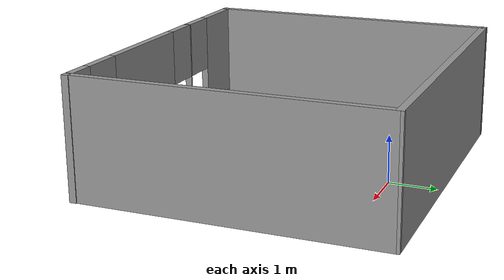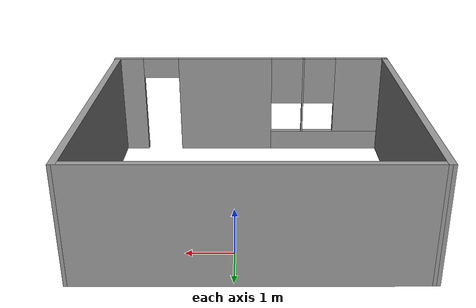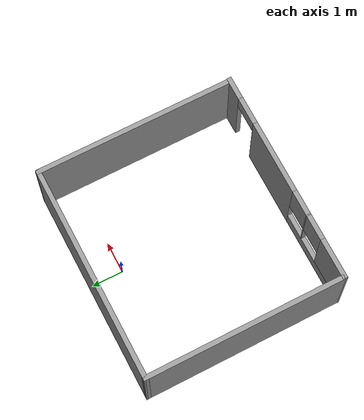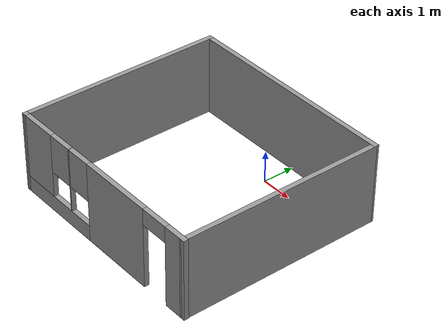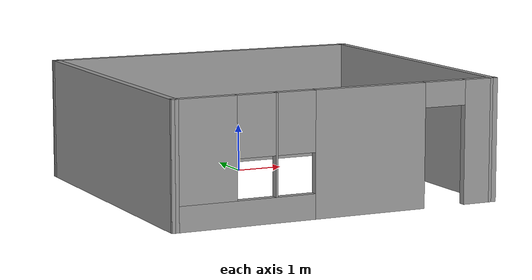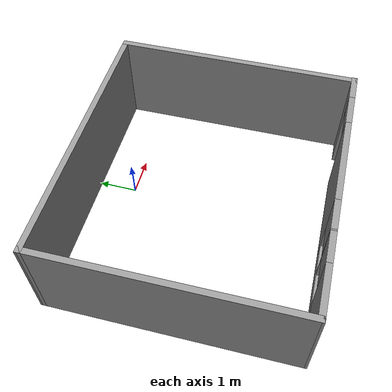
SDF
<?xml version='1.0'?>
<sdf version='1.6'>
  <model name='building_1'>
    <pose frame=''>-0.324334 -2.10719 0 0 -0 0</pose>
    <link name='Wall_0'>
      <collision name='Wall_0_Collision'>
        <geometry>
          <box>
            <size>6.44438 0.15 2.5</size>
          </box>
        </geometry>
        <pose frame=''>0 0 1.25 0 -0 0</pose>
      </collision>
      <visual name='Wall_0_Visual'>
        <pose frame=''>0 0 1.25 0 -0 0</pose>
        <geometry>
          <box>
            <size>6.44438 0.15 2.5</size>
          </box>
        </geometry>
        <material>
          <script>
            <uri>file://media/materials/scripts/gazebo.material</uri>
            <name>Gazebo/Grey</name>
          </script>
          <ambient>1 1 1 1</ambient>
        </material>
        <meta>
          <layer>0</layer>
        </meta>
      </visual>
      <pose frame=''>-3.43372 0 0 0 -0 1.57141</pose>
    </link>
    <link name='Wall_1'>
      <collision name='Wall_1_Collision'>
        <geometry>
          <box>
            <size>7 0.15 2.5</size>
          </box>
        </geometry>
        <pose frame=''>0 0 1.25 0 -0 0</pose>
      </collision>
      <visual name='Wall_1_Visual'>
        <pose frame=''>0 0 1.25 0 -0 0</pose>
        <geometry>
          <box>
            <size>7 0.15 2.5</size>
          </box>
        </geometry>
        <material>
          <script>
            <uri>file://media/materials/scripts/gazebo.material</uri>
            <name>Gazebo/Grey</name>
          </script>
          <ambient>1 1 1 1</ambient>
        </material>
        <meta>
          <layer>0</layer>
        </meta>
      </visual>
      <pose frame=''>-0.010666 3.14719 0 0 -0 0</pose>
    </link>
    <link name='Wall_2'>
      <collision name='Wall_2_Collision'>
        <geometry>
          <box>
            <size>6.44438 0.15 2.5</size>
          </box>
        </geometry>
        <pose frame=''>0 0 1.25 0 -0 0</pose>
      </collision>
      <visual name='Wall_2_Visual'>
        <pose frame=''>0 0 1.25 0 -0 0</pose>
        <geometry>
          <box>
            <size>6.44438 0.15 2.5</size>
          </box>
        </geometry>
        <material>
          <script>
            <uri>file://media/materials/scripts/gazebo.material</uri>
            <name>Gazebo/Grey</name>
          </script>
          <ambient>1 1 1 1</ambient>
        </material>
        <meta>
          <layer>0</layer>
        </meta>
      </visual>
      <pose frame=''>3.41628 0 0 0 0 -1.57018</pose>
    </link>
    <link name='Wall_3'>
      <pose frame=''>0.010712 -3.14719 0 0 -0 3.14159</pose>
      <visual name='Wall_3_Visual_0'>
        <pose frame=''>-3.12841 0 1.25 0 -0 0</pose>
        <geometry>
          <box>
            <size>0.743184 0.15 2.5</size>
          </box>
        </geometry>
        <material>
          <script>
            <uri>file://media/materials/scripts/gazebo.material</uri>
            <name>Gazebo/Grey</name>
          </script>
          <ambient>1 1 1 1</ambient>
        </material>
        <meta>
          <layer>0</layer>
        </meta>
      </visual>
      <collision name='Wall_3_Collision_0'>
        <geometry>
          <box>
            <size>0.743184 0.15 2.5</size>
          </box>
        </geometry>
        <pose frame=''>-3.12841 0 1.25 0 -0 0</pose>
      </collision>
      <visual name='Wall_3_Visual_1'>
        <pose frame=''>-0.657127 0 1.25 0 -0 0</pose>
        <geometry>
          <box>
            <size>2.39938 0.15 2.5</size>
          </box>
        </geometry>
        <material>
          <script>
            <uri>file://media/materials/scripts/gazebo.material</uri>
            <name>Gazebo/Grey</name>
          </script>
          <ambient>1 1 1 1</ambient>
        </material>
        <meta>
          <layer>0</layer>
        </meta>
      </visual>
      <collision name='Wall_3_Collision_1'>
        <geometry>
          <box>
            <size>2.39938 0.15 2.5</size>
          </box>
        </geometry>
        <pose frame=''>-0.657127 0 1.25 0 -0 0</pose>
      </collision>
      <visual name='Wall_3_Visual_2'>
        <pose frame=''>2.02128 0 0.25 0 -0 0</pose>
        <geometry>
          <box>
            <size>2.95744 0.15 0.5</size>
          </box>
        </geometry>
        <material>
          <script>
            <uri>file://media/materials/scripts/gazebo.material</uri>
            <name>Gazebo/Grey</name>
          </script>
          <ambient>1 1 1 1</ambient>
        </material>
        <meta>
          <layer>0</layer>
        </meta>
      </visual>
      <collision name='Wall_3_Collision_2'>
        <geometry>
          <box>
            <size>2.95744 0.15 0.5</size>
          </box>
        </geometry>
        <pose frame=''>2.02128 0 0.25 0 -0 0</pose>
      </collision>
      <visual name='Wall_3_Visual_3'>
        <pose frame=''>1.36232 0 1.5 0 -0 0</pose>
        <geometry>
          <box>
            <size>0.039523 0.15 2</size>
          </box>
        </geometry>
        <material>
          <script>
            <uri>file://media/materials/scripts/gazebo.material</uri>
            <name>Gazebo/Grey</name>
          </script>
          <ambient>1 1 1 1</ambient>
        </material>
        <meta>
          <layer>0</layer>
        </meta>
      </visual>
      <collision name='Wall_3_Collision_3'>
        <geometry>
          <box>
            <size>0.039523 0.15 2</size>
          </box>
        </geometry>
        <pose frame=''>1.36232 0 1.5 0 -0 0</pose>
      </collision>
      <visual name='Wall_3_Visual_4'>
        <pose frame=''>2.84104 0 1.5 0 -0 0</pose>
        <geometry>
          <box>
            <size>1.31791 0.15 2</size>
          </box>
        </geometry>
        <material>
          <script>
            <uri>file://media/materials/scripts/gazebo.material</uri>
            <name>Gazebo/Grey</name>
          </script>
          <ambient>1 1 1 1</ambient>
        </material>
        <meta>
          <layer>0</layer>
        </meta>
      </visual>
      <collision name='Wall_3_Collision_4'>
        <geometry>
          <box>
            <size>1.31791 0.15 2</size>
          </box>
        </geometry>
        <pose frame=''>2.84104 0 1.5 0 -0 0</pose>
      </collision>
      <visual name='Wall_3_Visual_5'>
        <pose frame=''>0.942562 0 1.9 0 -0 0</pose>
        <geometry>
          <box>
            <size>0.8 0.15 1.2</size>
          </box>
        </geometry>
        <material>
          <script>
            <uri>file://media/materials/scripts/gazebo.material</uri>
            <name>Gazebo/Grey</name>
          </script>
          <ambient>1 1 1 1</ambient>
        </material>
        <meta>
          <layer>0</layer>
        </meta>
      </visual>
      <collision name='Wall_3_Collision_5'>
        <geometry>
          <box>
            <size>0.8 0.15 1.2</size>
          </box>
        </geometry>
        <pose frame=''>0.942562 0 1.9 0 -0 0</pose>
      </collision>
      <visual name='Wall_3_Visual_6'>
        <pose frame=''>1.78208 0 1.9 0 -0 0</pose>
        <geometry>
          <box>
            <size>0.8 0.15 1.2</size>
          </box>
        </geometry>
        <material>
          <script>
            <uri>file://media/materials/scripts/gazebo.material</uri>
            <name>Gazebo/Grey</name>
          </script>
          <ambient>1 1 1 1</ambient>
        </material>
        <meta>
          <layer>0</layer>
        </meta>
      </visual>
      <collision name='Wall_3_Collision_6'>
        <geometry>
          <box>
            <size>0.8 0.15 1.2</size>
          </box>
        </geometry>
        <pose frame=''>1.78208 0 1.9 0 -0 0</pose>
      </collision>
      <visual name='Wall_3_Visual_7'>
        <pose frame=''>-2.30682 0 2.25 0 -0 0</pose>
        <geometry>
          <box>
            <size>0.9 0.15 0.5</size>
          </box>
        </geometry>
        <material>
          <script>
            <uri>file://media/materials/scripts/gazebo.material</uri>
            <name>Gazebo/Grey</name>
          </script>
          <ambient>1 1 1 1</ambient>
        </material>
        <meta>
          <layer>0</layer>
        </meta>
      </visual>
      <collision name='Wall_3_Collision_7'>
        <geometry>
          <box>
            <size>0.9 0.15 0.5</size>
          </box>
        </geometry>
        <pose frame=''>-2.30682 0 2.25 0 -0 0</pose>
      </collision>
    </link>
    <link name='Wall_4'>
      <collision name='Wall_4_Collision'>
        <geometry>
          <box>
            <size>0.15 0.15 2.5</size>
          </box>
        </geometry>
        <pose frame=''>0 0 1.25 0 -0 0</pose>
      </collision>
      <visual name='Wall_4_Visual'>
        <pose frame=''>0 0 1.25 0 -0 0</pose>
        <geometry>
          <box>
            <size>0.15 0.15 2.5</size>
          </box>
        </geometry>
        <material>
          <script>
            <uri>file://media/materials/scripts/gazebo.material</uri>
            <name>Gazebo/Grey</name>
          </script>
          <ambient>1 1 1 1</ambient>
        </material>
        <meta>
          <layer>0</layer>
        </meta>
      </visual>
      <pose frame=''>-3.43178 -3.14719 0 0 -0 0</pose>
    </link>
    <static>1</static>
  </model>
</sdf>
